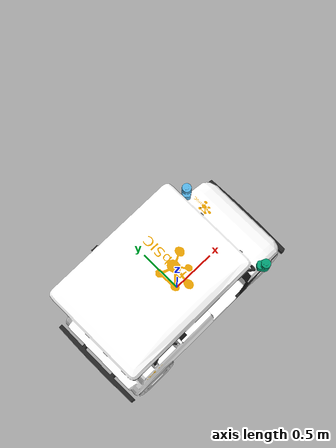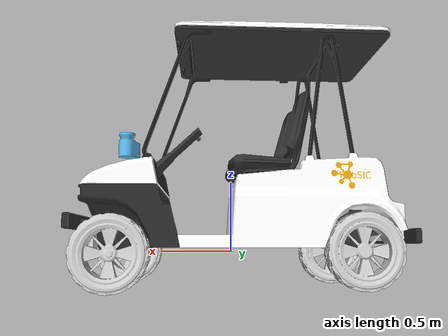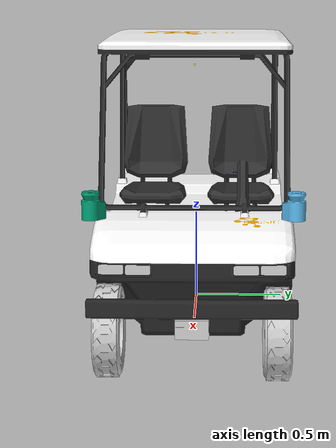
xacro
<?xml version="1.0"?>

<robot name="golfinho">

  <!--      Links        -->

  <!--       Base        -->

 <link name='base_link'>

      <inertial>
        <mass value="320"/>
        <origin rpy="0 0 0" xyz="0 0 0"/>
        <inertia ixx="10.0" ixy="0" ixz="0" iyy="10.0" iyz="0" izz="10.0"/>
      </inertial>

      <collision name='collision'>
        <geometry>
            <box size="1 0.05 0.01"/>
	 </geometry>
      </collision>

      <visual name='visual_0'>
       <origin rpy="0 -0 1.5708" xyz="-0.08 0 -0.15"/>
        <geometry>
          <mesh filename="file:///$(find golfinho_model)/meshes/base_link.dae" scale="0.98 0.85 0.9"/>
        </geometry>
      </visual>
    </link>

  <!--      Whells       -->

  <!--       Left        -->
    <link name='front_left_wheel'>
      <inertial>
        <mass value="37.37513510"/>
        <origin rpy="0 0 0" xyz="0 0 0"/>
        <inertia ixx="0.59761284" ixy="0" ixz="0" iyy="0.59761284" iyz="0" izz="0.94605811"/>
      </inertial>

      <collision name='front_left_wheel_collision'>
        <geometry>
          <cylinder length="0.6" radius="0.225"/>
	 </geometry>
      </collision>

      <visual name='front_left_wheel_visual_0'>
       <origin rpy="-1.570800 0 0" xyz="-0.05 -0.380000 0"/>
         <geometry>
             <mesh filename="file:///$(find golfinho_model)/meshes/wheel_.dae"  scale="0.13 0.08 0.13"/>
         </geometry>
      </visual>
    </link>

   <link name="front_left_mount">
     <inertial>
        <mass value="0.00064182"/>
        <origin rpy="0 0 0" xyz="0 0 0"/>
        <inertia ixx="2.11e-06" ixy="0" ixz="0" iyy="2.11e-06" iyz="0" izz="2.7e-07"/>
      </inertial>

      <collision name='front_left_mount_collision'>
        <geometry>
           <cylinder length="0.072407" radius="0.115000"/>
	 </geometry>
      </collision>

    <visual name='front_left_mount_visual'>
        <geometry>
            <cylinder length="0.0001" radius="0.0001"/>
	 </geometry>
       <origin rpy="1.5708 0 0" xyz="0 0 0"/>
    </visual>
   </link>

  <!--       Right       -->

  <link name='front_right_wheel'>
      <inertial>
        <mass value="37.37513510"/>
        <origin rpy="0 0 0" xyz="0 0 0"/>
        <inertia ixx="0.59761284" ixy="0" ixz="0" iyy="0.59761284" iyz="0" izz="0.94605811"/>
      </inertial>

      <collision name='front_right_wheel_collision'>
        <geometry>
          <cylinder length="0.6" radius="0.225"/>
	 </geometry>
      </collision>

      <visual name='front_right_wheel_visual_0'>
          <origin rpy="1.570800 0 0" xyz="-0.05 0.380000 0"/>
         <geometry>
           <mesh filename="file:///$(find golfinho_model)/meshes/wheel_.dae"  scale="0.13 0.08 0.13"/>
         </geometry>
      </visual>
  </link>

  <link name="front_right_mount">
     <inertial>
        <mass value="0.00064182"/>
        <origin rpy="0 0 0" xyz="0 0 0"/>
        <inertia ixx="2.11e-06" ixy="0" ixz="0" iyy="2.11e-06" iyz="0" izz="2.7e-07"/>
      </inertial>

      <collision name='front_right_mount_collision'>
        <geometry>
          <cylinder length="0.072407" radius="0.115000"/>
	 </geometry>
      </collision>

    <visual name='front_right_mount_visual'>
        <geometry>
          <cylinder length="0.0001" radius="0.0001"/>
	 </geometry>
       <origin rpy="1.5708 0 0" xyz="0 0 0"/>
    </visual>
  </link>

  <!--       Back        -->
  <!--       Left       -->

<link name='rear_left_wheel'>
      <inertial>
        <mass value="37.37513510"/>
        <origin rpy="0 0 0" xyz="0 0 0"/>
        <inertia ixx="0.59761284" ixy="0" ixz="0" iyy="0.59761284" iyz="0" izz="0.94605811"/>
      </inertial>

      <collision name='rear_left_wheel_collision'>
        <geometry>
          <cylinder length="0.6" radius="0.225"/>
	 </geometry>
      </collision>

      <visual name='rear_left_wheel_visual_0'>
       <origin rpy="1.570800 0 0" xyz="0 0.380000 0"/>
         <geometry>
           <mesh filename="file:///$(find golfinho_model)/meshes/wheel_.dae"  scale="0.13 0.08 0.13"/>
         </geometry>
      </visual>
</link>

  <!--       Right       -->

<link name='rear_right_wheel'>
      <inertial>
        <mass value="37.37513510"/>
        <origin rpy="0 0 0" xyz="0 0 0"/>
        <inertia ixx="0.59761284" ixy="0" ixz="0" iyy="0.59761284" iyz="0" izz="0.94605811"/>
      </inertial>

      <collision name='rear_right_wheel_collision'>
        <geometry>
          <cylinder length="0.6" radius="0.225"/>
	 </geometry>
      </collision>

       <visual name='rear_left_wheel_visual_0'>
       <origin rpy="-1.570800 0 0" xyz="0 -0.380000 0"/>
         <geometry>
           <mesh filename="file:///$(find golfinho_model)/meshes/wheel_.dae"  scale="0.13 0.08 0.13"/>
         </geometry>
      </visual>
 </link>

  <!--    steering       -->

<link name='steering_wheel'>
      <inertial>
        <mass value="0.00016233"/>
        <origin rpy="0 0 0" xyz="0 0 0"/>
        <inertia ixx="6e-08" ixy="0" ixz="0" iyy="6e-08" iyz="0" izz="8e-08"/>
      </inertial>

      <collision name='collision'>
         <origin rpy="0 0 0" xyz="-0.012 -0.01 -0.04"/>
         <geometry>
          <cylinder length="0.0001" radius="0.0001"/>
	 </geometry>
      </collision>

     <visual name='visual'>
        <origin rpy="1.4108 0 0" xyz="0 0 -0.07"/>
        <geometry>
           <mesh filename="file:///$(find golfinho_model)/meshes/steering.dae"  scale="0.1 0.1 0.1"/>
	</geometry>
     </visual>
</link>

  <!--    Laser's        -->

  <!--    Four layer     -->

  <!--       front       -->
<link name='four_layer_laser'>
      <inertial>
        <mass value="0.00106532"/>
        <origin rpy="0 0 0" xyz="0 0 0"/>
        <inertia ixx="1.69e-06" ixy="0" ixz="0" iyy="2.35e-06" iyz="0" izz="3.52e-06"/>
      </inertial>

      <visual name='visual_link_r'>
        <origin rpy="0 0 0" xyz="-0.05 0 -0.07"/>
       <geometry>
         <mesh filename="file:///$(find golfinho_model)/meshes/sick_4camadas.dae"  scale="0.05 0.05 0.05"/>
        </geometry>
      </visual>
</link>

  <!--    one layer      -->

  <!--      left         -->

<link name='laser_link_left'>
      <inertial>
        <mass value="0.00106532"/>
        <origin rpy="0 0 0" xyz="0 0 0"/>
        <inertia ixx="1.69e-06" ixy="0" ixz="0" iyy="2.35e-06" iyz="0" izz="3.52e-06"/>
      </inertial>

     <visual name='visual_link_l'>
       <origin rpy="0 -0 0.7854" xyz="0.0 0 -0.12"/>
       <geometry>
        <mesh filename="file:///$(find golfinho_model)/meshes/sick_270.dae"  scale="0.0005 0.0005 0.0005"/>
       </geometry>
     </visual>

      <collision name='collision_link_l'>
        <geometry>
         <box size="0.153353 0.126857 0.054761"/>
        </geometry>
      </collision>
</link>

  <!--      right        -->

<link name='laser_link_right'>
       <inertial>
        <mass value="0.00106532"/>
        <origin rpy="0 0 0" xyz="0 0 0"/>
        <inertia ixx="1.69e-06" ixy="0" ixz="0" iyy="2.35e-06" iyz="0" izz="3.52e-06"/>
      </inertial>

     <visual name='visual_link_r'>
       <origin rpy="0 -0 -0.7854" xyz="0 0 -0.12"/>
       <geometry>
        <mesh filename="$(find golfinho_model)/meshes/sick_270.dae"  scale="0.0005 0.0005 0.0005"/>
       </geometry>
      </visual>

      <collision name='collision_link_r'>
        <geometry>
         <box size="0.153353 0.126857 0.054761"/>
        </geometry>
      </collision>
</link>

  <!--      câmera        -->

<link name='camera_link'>
      <inertial>
        <mass value="0.00106532"/>
        <origin rpy="0 0 0" xyz="0 0 0"/>
        <inertia ixx="1.69e-06" ixy="0" ixz="0" iyy="2.35e-06" iyz="0" izz="3.52e-06"/>
      </inertial>

     <visual name='visual'>
       <geometry>
        <box size="0.01 0.01 0.01"/>
        </geometry>
     </visual>

      <collision name='collision'>
        <geometry>
            <box size="0.01 0.01 0.01"/>
        </geometry>
      </collision>
</link>

  <!--      Joints       -->

<joint name="steering_joint" type="continuous">
    <parent link="base_link"/>
    <child link="steering_wheel"/>
    <axis xyz="0 0 -1"/>
    <origin rpy="1e-06 -0.872602 -6.8e-05" xyz=" 0.194763 0.27693 0.818981"/>
</joint>

<joint name="front_left_wheel_joint" type="continuous">
      <parent link="front_left_mount"/>
     <child link="front_left_wheel"/>
     <axis xyz="0 0 1"/>
     <origin rpy="0 0 0"  xyz="0.0 0.0 0.0"/>
</joint>

<joint name="front_left_mount_joint" type="continuous">
      <parent link="base_link"/>
     <child link="front_left_mount"/>
     <axis xyz="0 -1 0"/>
     <origin rpy="-1.5708 0 0" xyz="0.835 0.45 0.0"/>
</joint>

<joint name="front_right_wheel_joint" type="continuous">
      <parent link="front_right_mount"/>
      <child link="front_right_wheel"/>
      <axis xyz="0 0 1"/>
      <origin rpy="0 0 0"  xyz="0.0 0.0 0.0"/>
</joint>

<joint name="front_right_mount_joint" type="continuous">
      <parent link="base_link"/>
      <child link="front_right_mount"/>
      <axis xyz="0 -1 0"/>
      <origin rpy="-1.5708 0 0" xyz="0.835 -0.45 0.0"/>
</joint>

<joint name="rear_left_wheel_joint" type="continuous">
    <parent link="base_link"/>
    <child link="rear_left_wheel"/>
    <axis xyz="0 0 1"/>
    <origin rpy="-1.5708 0 0"  xyz="-0.835 0.485 0.0"/>
</joint>

 <joint name="rear_right_wheel_joint" type="continuous">
     <parent link="base_link"/>
     <child link="rear_right_wheel"/>
     <axis xyz="0 0 1"/>
     <origin rpy="-1.5708 0 0"  xyz="-0.835 -0.485 0.0"/>
</joint>

  <!--  Suport Lasers    -->

<joint name="laser_suport" type="fixed">
    <parent link="base_link"/>
    <child link="four_layer_laser"/>
    <origin xyz="1.05 0 0.1"/>
</joint>

<joint name="laser_suport_left" type="fixed">
     <parent link="base_link"/>
     <child link="laser_link_left"/>
     <origin xyz="0.68 0.55 0.71"/>
</joint>

<joint name="laser_suport_right" type="fixed">
     <parent link="base_link"/>
     <child link="laser_link_right"/>
     <origin xyz="0.68 -0.55 0.71"/>
</joint>

<joint name="camera_front" type="fixed">
     <parent link="base_link"/>
     <child link="camera_link"/>
     <origin xyz="0.4 0 1.4"/>
</joint>

 <link name="camera_link_optical"/>

<joint name="camera_optical_joint" type="fixed">
    <origin xyz="0 0 0" rpy="0 0 0"/>
    <parent link="camera_link"/>
    <child link="camera_link_optical"/>
</joint>

  <!-- *********************** IMU SETUP *********************************  -->
  <!-- Each sensor must be attached to a link.                              -->

  <link name="imu_link"/>

<joint name="imu_link_joint" type="fixed">
    <parent link="base_link" />
    <child link="imu_link" />
    <origin xyz="-0.10 0 0.05"  rpy="0 -1.9 0" />
  </joint>

  <!-- *********************** GPS SETUP **********************************  -->
  <link name="gps_link"/>

  <joint name="gps_joint" type="fixed">
    <parent link="base_link"/>
    <child link="gps_link"/>
    <origin xyz="0.10 0 0.05" rpy="0 0 0"/>
  </joint>

  <!--     material properties      -->

      <gazebo reference="front_left_wheel">
      <kp value="10000000.0" />
      <kd value="1.0" />
      </gazebo>

     <gazebo reference="front_right_wheel">
      <kp value="10000000.0" />
      <kd value="1.0" />
      </gazebo>

      <gazebo reference="rear_left_wheel">
      <kp value="10000000.0" />
      <kd value="1.0" />
      </gazebo>

     <gazebo reference="rear_right_wheel">
      <kp value="10000000.0" />
      <kd value="1.0" />
      </gazebo>

      <gazebo reference="front_left_mount">
      <kp value="10000000.0" />
      <kd value="1.0" />
      </gazebo>

      <gazebo reference="front_right_mount">
      <kp value="10000000.0" />
      <kd value="1.0" />
      </gazebo>

  <!--      Plugins      -->

  <!--       four layer Laser    -->

<gazebo reference="four_layer_laser">
  <sensor type="ray" name="block_laser_sensor">
        <always_on>true</always_on>
        <visualize>true</visualize>
            <update_rate>5</update_rate>
    <ray>
      <scan>
        <horizontal>
          <samples>200</samples>
          <resolution>1</resolution>
          <min_angle>-0.9</min_angle>
          <max_angle>0.9</max_angle>
        </horizontal>
      </scan>
      <range>
        <min>0.10</min>
        <max>10</max>
        <resolution>0.01</resolution>
      </range>
    </ray>

    <plugin name="gazebo_ros_block_laser_controller" filename="libgazebo_ros_ray_sensor.so">

         <ros>
          <remapping>~/out:=scan</remapping>
        </ros>
        <output_type>sensor_msgs/LaserScan</output_type>
              <topicName>scan</topicName>
        <frame_name>four_layer_laser</frame_name>

    </plugin>
  </sensor>
</gazebo>

  <!--  Odometria   -->
  <!--  Odometria   -->
  <!--  Odometria   -->
  <!--  Odometria   -->
  <!--  Odometria   -->
  <!--  Odometria   -->

  <gazebo>

    <plugin filename="libgazebo_ros_ackermann_drive.so" name="ackermann_drive">
      <update_rate>100.0</update_rate>
      <!-- wheels -->
      <front_left_joint>front_left_wheel_joint</front_left_joint>
      <front_right_joint>front_right_wheel_joint</front_right_joint>
      <rear_left_joint>rear_left_wheel_joint</rear_left_joint>
      <rear_right_joint>rear_right_wheel_joint</rear_right_joint>
      <left_steering_joint>front_left_mount_joint</left_steering_joint>
      <right_steering_joint>front_right_mount_joint</right_steering_joint>
      <steering_wheel_joint>steering_joint</steering_wheel_joint>

      <max_steer>0.523</max_steer>

      <max_steering_angle>9.42</max_steering_angle>

      <max_speed>20</max_speed>

      <left_steering_pid_gain>6000 0 1</left_steering_pid_gain>
      <left_steering_i_range>0 0</left_steering_i_range>
      <right_steering_pid_gain>6000 0 1</right_steering_pid_gain>
      <right_steering_i_range>0 0</right_steering_i_range>
      <linear_velocity_pid_gain>1000 0 1</linear_velocity_pid_gain>
      <linear_velocity_i_range>0 0</linear_velocity_i_range>
      <!-- output -->
      <publish_odom>true</publish_odom>
      <publish_odom_tf>true</publish_odom_tf>
      <publish_wheel_tf>true</publish_wheel_tf>
      <publish_distance>true</publish_distance>

      <odometry_frame>odom</odometry_frame>
      <robot_base_frame>base_link</robot_base_frame>
        <ros>
               <remapping>odom:=wheel/odometry</remapping>
        </ros>
    </plugin>
  </gazebo>

  <gazebo reference="imu_link">
    <gravity>true</gravity>
    <sensor name="twr_imu" type="imu">
      <always_on>true</always_on>
      <update_rate>100</update_rate>
      <visualize>true</visualize>
      <imu>
        <orientation>
          <x>
            <noise type="gaussian">
              <mean>0.0</mean>
              <stddev>2e-3</stddev>
            </noise>
          </x>
          <y>
            <noise type="gaussian">
              <mean>0.0</mean>
              <stddev>2e-3</stddev>
            </noise>
          </y>
          <z>
            <noise type="gaussian">
              <mean>0.0</mean>
              <stddev>2e-3</stddev>
            </noise>
          </z>
        </orientation>
        <angular_velocity>
          <x>
            <noise type="gaussian">
              <mean>0.0</mean>
              <stddev>2e-4</stddev>
            </noise>
          </x>
          <y>
            <noise type="gaussian">
              <mean>0.0</mean>
              <stddev>2e-4</stddev>
            </noise>
          </y>
          <z>
            <noise type="gaussian">
              <mean>0.0</mean>
              <stddev>2e-4</stddev>
            </noise>
          </z>
        </angular_velocity>
        <linear_acceleration>
          <x>
            <noise type="gaussian">
              <mean>0.0</mean>
              <stddev>1.7e-2</stddev>
            </noise>
          </x>
          <y>
            <noise type="gaussian">
              <mean>0.0</mean>
              <stddev>1.7e-2</stddev>
            </noise>
          </y>
          <z>
            <noise type="gaussian">
              <mean>0.0</mean>
              <stddev>1.7e-2</stddev>
            </noise>
          </z>
        </linear_acceleration>
      </imu>
      <plugin name="two_wheeled_robot_imu" filename="libgazebo_ros_imu_sensor.so">
        <initial_orientation_as_reference>false</initial_orientation_as_reference>
        <frame_name>imu_link</frame_name>
          <ros>

          <namespace>/imu</namespace>
          <remapping>~/out:=data</remapping>
          </ros>
      </plugin>
    </sensor>
</gazebo>

   <plugin name="gazebo_ros_joint_state_publisher" filename="libgazebo_ros_joint_state_publisher.so">
        <ros>
           <remapping>~/out:=joint_states</remapping>
       </ros>
         <update_rate>30</update_rate>
         <joint_name>rear_right_wheel_joint</joint_name>
         <joint_name>rear_left_wheel_joint</joint_name>
      </plugin>

  <gazebo reference="gps_link">
    <sensor name="golfinho_gps" type="gps">
      <always_on>true</always_on>
      <update_rate>10.0</update_rate>
      <gps>
        <position_sensing>
          <horizontal>
            <noise type="gaussian">
              <mean>0.0</mean>
              <stddev>1e-2</stddev>
            </noise>
          </horizontal>
          <vertical>
            <noise type="gaussian">
              <mean>0.0</mean>
              <stddev>1</stddev>
            </noise>
          </vertical>
        </position_sensing>
      </gps>
      <plugin name="robot_golfinho_gps" filename="libgazebo_ros_gps_sensor.so">
        <ros>
          <remapping>~/out:=gps/fix</remapping>
        </ros>
      </plugin>
    </sensor>
  </gazebo>

<gazebo reference="camera_link">
    <sensor name="mycamera" type="depth">
        <always_on>true</always_on>
        <update_rate>15</update_rate>
        <pose>0 0 0 0 0 0</pose>
        <camera name="realsense_depth_camera">
            <horizontal_fov>1.46608</horizontal_fov>
            <image>
                <width>424</width>
                <height>240</height>
                <format>B8G8R8</format>
            </image>
            <clip>
                <near>0.05</near>
                <far>8</far>
            </clip>
        </camera>
        <!-- https://github.com/mlherd/ros2_turtlebot3_waffle_intel_realsense -->
        <plugin name="intel_realsense_d430_depth_driver" filename="libgazebo_ros_camera.so">
            <ros>
                <namespace>zed</namespace>
                <remapping>mycamera/image_raw:=color/image_raw</remapping>
                <remapping>mycamera/depth/image_raw:=depth/image_rect_raw</remapping>
                <remapping>mycamera/camera_info:=camera_info</remapping>
                <remapping>mycamera/depth/camera_info:=depth/camera_info</remapping>
                <remapping>mycamera/points:=depth/points</remapping>
            </ros>
            <camera_name>mycamera</camera_name>
            <frame_name>mycamera_link_optical</frame_name>
            <hack_baseline>0.07</hack_baseline>
            <min_depth>0.05</min_depth>
            <max_depth>8.0</max_depth>
        </plugin>
    </sensor>
</gazebo>

</robot>
